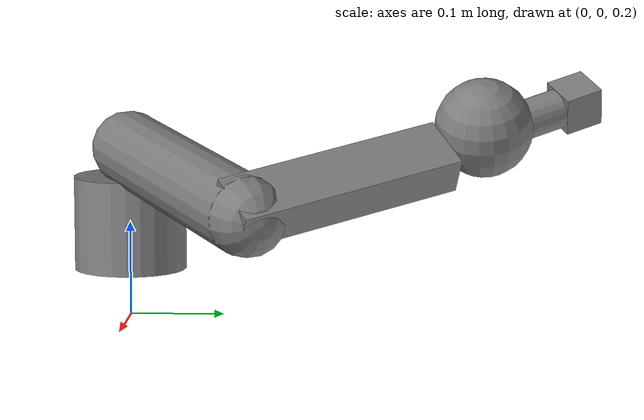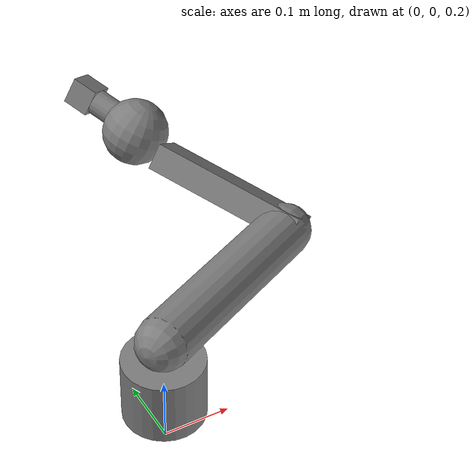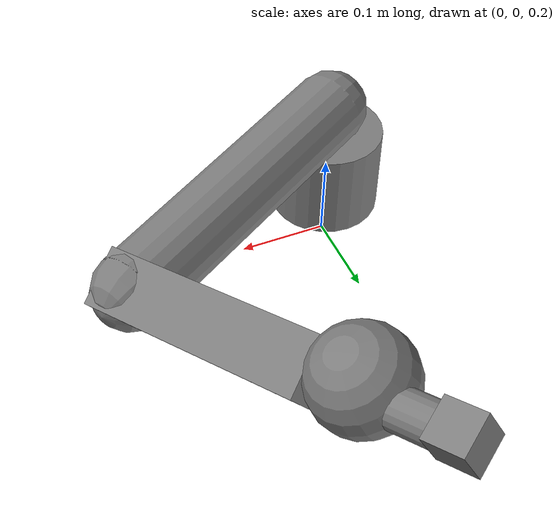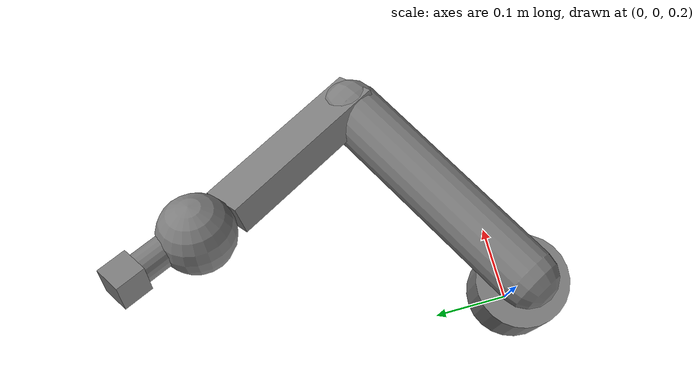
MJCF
<mujoco model="arm3d">
  <compiler angle="radian"/>
  <option timestep="0.002" gravity="0 0 -9.81"/>
  <default>
    <geom contype="0" conaffinity="0" density="800"/>
    <default class="link">
      <joint damping="0.1" armature="0.02"/>
    </default>
  </default>
  <worldbody>
    <body name="base" pos="0 0 0.3" euler="0 0 0.3" childclass="link">
      <joint name="j0" axis="0 0 1"/>
      <geom type="cylinder" size="0.06 0.05"/>
      <body name="l1" pos="0 0 0.08" quat="0.9 0.1 0.2 0.1">
        <joint name="j1" axis="0 1 0" pos="0 0 -0.02"/>
        <geom type="capsule" fromto="0 0 0 0.3 0 0.1" size="0.04"/>
        <body name="l2" pos="0.3 0 0.1" xyaxes="0 1 0 -1 0 0">
          <joint name="j2" axis="1 0 0"/>
          <joint name="j2b" axis="0 0 1"/>
          <geom type="box" size="0.12 0.03 0.02" pos="0.1 0 0" euler="0.2 0.1 0"/>
          <body name="l3" pos="0.22 0 0">
            <joint name="j3" type="ball" pos="0.01 0.02 0"/>
            <geom type="sphere" size="0.05" pos="0.05 0.01 0"/>
            <geom type="capsule" size="0.02 0.05" pos="0.1 0 0" zaxis="1 0 0"/>
            <body name="finger" pos="0.15 0 0">
              <joint name="j4" type="slide" axis="0 1 1"/>
              <inertial pos="0.01 0 0" mass="0.1" diaginertia="0.001 0.002 0.0015" quat="0.8 0.6 0 0"/>
              <geom type="box" size="0.02 0.02 0.02"/>
            </body>
          </body>
        </body>
      </body>
    </body>
  </worldbody>
  <actuator>
    <motor joint="j0" gear="5"/>
    <position joint="j1" kp="20" kv="1"/>
    <velocity joint="j2" kv="2"/>
    <motor joint="j4"/>
  </actuator>
</mujoco>
